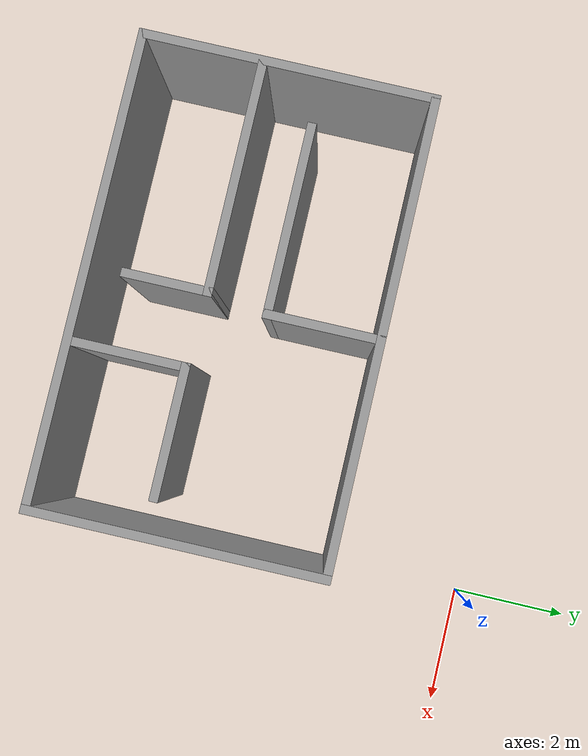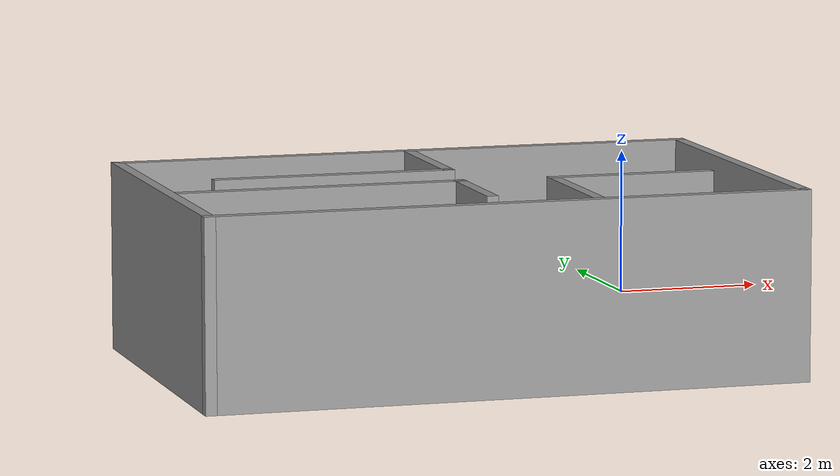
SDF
<?xml version='1.0'?>
<sdf version='1.7'>
  <model name='room'>
    <pose>-3.925 -3.6725 0 0 -0 0</pose>
    <link name='Wall_0'>
      <collision name='Wall_0_Collision'>
        <geometry>
          <box>
            <size>8 0.15 2.5</size>
          </box>
        </geometry>
        <pose>0 0 1.25 0 -0 0</pose>
      </collision>
      <visual name='Wall_0_Visual'>
        <pose>0 0 1.25 0 -0 0</pose>
        <geometry>
          <box>
            <size>8 0.15 2.5</size>
          </box>
        </geometry>
        <material>
          <script>
            <uri>file://media/materials/scripts/gazebo.material</uri>
            <name>Gazebo/Grey</name>
          </script>
          <ambient>1 1 1 1</ambient>
        </material>
        <meta>
          <layer>0</layer>
        </meta>
      </visual>
      <pose>-0 1.2525 0 0 -0 0</pose>
    </link>
    <link name='Wall_1'>
      <collision name='Wall_1_Collision'>
        <geometry>
          <box>
            <size>5 0.15 2.5</size>
          </box>
        </geometry>
        <pose>0 0 1.25 0 -0 0</pose>
      </collision>
      <visual name='Wall_1_Visual'>
        <pose>0 0 1.25 0 -0 0</pose>
        <geometry>
          <box>
            <size>5 0.15 2.5</size>
          </box>
        </geometry>
        <material>
          <script>
            <uri>file://media/materials/scripts/gazebo.material</uri>
            <name>Gazebo/Grey</name>
          </script>
          <ambient>1 1 1 1</ambient>
        </material>
        <meta>
          <layer>0</layer>
        </meta>
      </visual>
      <pose>3.925 -1.1725 0 0 -0 -1.5708</pose>
    </link>
    <link name='Wall_10'>
      <collision name='Wall_10_Collision'>
        <geometry>
          <box>
            <size>4 0.15 2.5</size>
          </box>
        </geometry>
        <pose>0 0 1.25 0 -0 0</pose>
      </collision>
      <visual name='Wall_10_Visual'>
        <pose>0 0 1.25 0 -0 0</pose>
        <geometry>
          <box>
            <size>4 0.15 2.5</size>
          </box>
        </geometry>
        <material>
          <script>
            <uri>file://media/materials/scripts/gazebo.material</uri>
            <name>Gazebo/Grey</name>
          </script>
          <ambient>1 1 1 1</ambient>
        </material>
        <meta>
          <layer>0</layer>
        </meta>
      </visual>
      <pose>-1.99 -1.5975 0 0 -0 0</pose>
    </link>
    <link name='Wall_11'>
      <collision name='Wall_11_Collision'>
        <geometry>
          <box>
            <size>1.5 0.15 2.5</size>
          </box>
        </geometry>
        <pose>0 0 1.25 0 -0 0</pose>
      </collision>
      <visual name='Wall_11_Visual'>
        <pose>0 0 1.25 0 -0 0</pose>
        <geometry>
          <box>
            <size>1.5 0.15 2.5</size>
          </box>
        </geometry>
        <material>
          <script>
            <uri>file://media/materials/scripts/gazebo.material</uri>
            <name>Gazebo/Grey</name>
          </script>
          <ambient>1 1 1 1</ambient>
        </material>
        <meta>
          <layer>0</layer>
        </meta>
      </visual>
      <pose>-0.065 -2.2725 0 0 -0 -1.5708</pose>
    </link>
    <link name='Wall_13'>
      <collision name='Wall_13_Collision'>
        <geometry>
          <box>
            <size>2 0.15 2.5</size>
          </box>
        </geometry>
        <pose>0 0 1.25 0 -0 0</pose>
      </collision>
      <visual name='Wall_13_Visual'>
        <pose>0 0 1.25 0 -0 0</pose>
        <geometry>
          <box>
            <size>2 0.15 2.5</size>
          </box>
        </geometry>
        <material>
          <script>
            <uri>file://media/materials/scripts/gazebo.material</uri>
            <name>Gazebo/Grey</name>
          </script>
          <ambient>1 1 1 1</ambient>
        </material>
        <meta>
          <layer>0</layer>
        </meta>
      </visual>
      <pose>1.185 -2.5925 0 0 -0 1.5708</pose>
    </link>
    <link name='Wall_14'>
      <collision name='Wall_14_Collision'>
        <geometry>
          <box>
            <size>2.25 0.15 2.5</size>
          </box>
        </geometry>
        <pose>0 0 1.25 0 -0 0</pose>
      </collision>
      <visual name='Wall_14_Visual'>
        <pose>0 0 1.25 0 -0 0</pose>
        <geometry>
          <box>
            <size>2.25 0.15 2.5</size>
          </box>
        </geometry>
        <material>
          <script>
            <uri>file://media/materials/scripts/gazebo.material</uri>
            <name>Gazebo/Grey</name>
          </script>
          <ambient>1 1 1 1</ambient>
        </material>
        <meta>
          <layer>0</layer>
        </meta>
      </visual>
      <pose>2.235 -1.6675 0 0 -0 0</pose>
    </link>
    <link name='Wall_2'>
      <collision name='Wall_2_Collision'>
        <geometry>
          <box>
            <size>8 0.15 2.5</size>
          </box>
        </geometry>
        <pose>0 0 1.25 0 -0 0</pose>
      </collision>
      <visual name='Wall_2_Visual'>
        <pose>0 0 1.25 0 -0 0</pose>
        <geometry>
          <box>
            <size>8 0.15 2.5</size>
          </box>
        </geometry>
        <material>
          <script>
            <uri>file://media/materials/scripts/gazebo.material</uri>
            <name>Gazebo/Grey</name>
          </script>
          <ambient>1 1 1 1</ambient>
        </material>
        <meta>
          <layer>0</layer>
        </meta>
      </visual>
      <pose>-0 -3.5975 0 0 -0 3.14159</pose>
    </link>
    <link name='Wall_3'>
      <collision name='Wall_3_Collision'>
        <geometry>
          <box>
            <size>5 0.15 2.5</size>
          </box>
        </geometry>
        <pose>0 0 1.25 0 -0 0</pose>
      </collision>
      <visual name='Wall_3_Visual'>
        <pose>0 0 1.25 0 -0 0</pose>
        <geometry>
          <box>
            <size>5 0.15 2.5</size>
          </box>
        </geometry>
        <material>
          <script>
            <uri>file://media/materials/scripts/gazebo.material</uri>
            <name>Gazebo/Grey</name>
          </script>
          <ambient>1 1 1 1</ambient>
        </material>
        <meta>
          <layer>0</layer>
        </meta>
      </visual>
      <pose>-3.925 -1.1725 0 0 -0 1.5708</pose>
    </link>
    <link name='Wall_7'>
      <collision name='Wall_7_Collision'>
        <geometry>
          <box>
            <size>2 0.15 2.5</size>
          </box>
        </geometry>
        <pose>0 0 1.25 0 -0 0</pose>
      </collision>
      <visual name='Wall_7_Visual'>
        <pose>0 0 1.25 0 -0 0</pose>
        <geometry>
          <box>
            <size>2 0.15 2.5</size>
          </box>
        </geometry>
        <material>
          <script>
            <uri>file://media/materials/scripts/gazebo.material</uri>
            <name>Gazebo/Grey</name>
          </script>
          <ambient>1 1 1 1</ambient>
        </material>
        <meta>
          <layer>0</layer>
        </meta>
      </visual>
      <pose>0.075 0.3275 0 0 -0 -1.5708</pose>
    </link>
    <link name='Wall_8'>
      <collision name='Wall_8_Collision'>
        <geometry>
          <box>
            <size>3.25 0.15 2.5</size>
          </box>
        </geometry>
        <pose>0 0 1.25 0 -0 0</pose>
      </collision>
      <visual name='Wall_8_Visual'>
        <pose>0 0 1.25 0 -0 0</pose>
        <geometry>
          <box>
            <size>3.25 0.15 2.5</size>
          </box>
        </geometry>
        <material>
          <script>
            <uri>file://media/materials/scripts/gazebo.material</uri>
            <name>Gazebo/Grey</name>
          </script>
          <ambient>1 1 1 1</ambient>
        </material>
        <meta>
          <layer>0</layer>
        </meta>
      </visual>
      <pose>-1.475 -0.5975 0 0 -0 3.14159</pose>
    </link>
    <static>1</static>
  </model>
</sdf>
